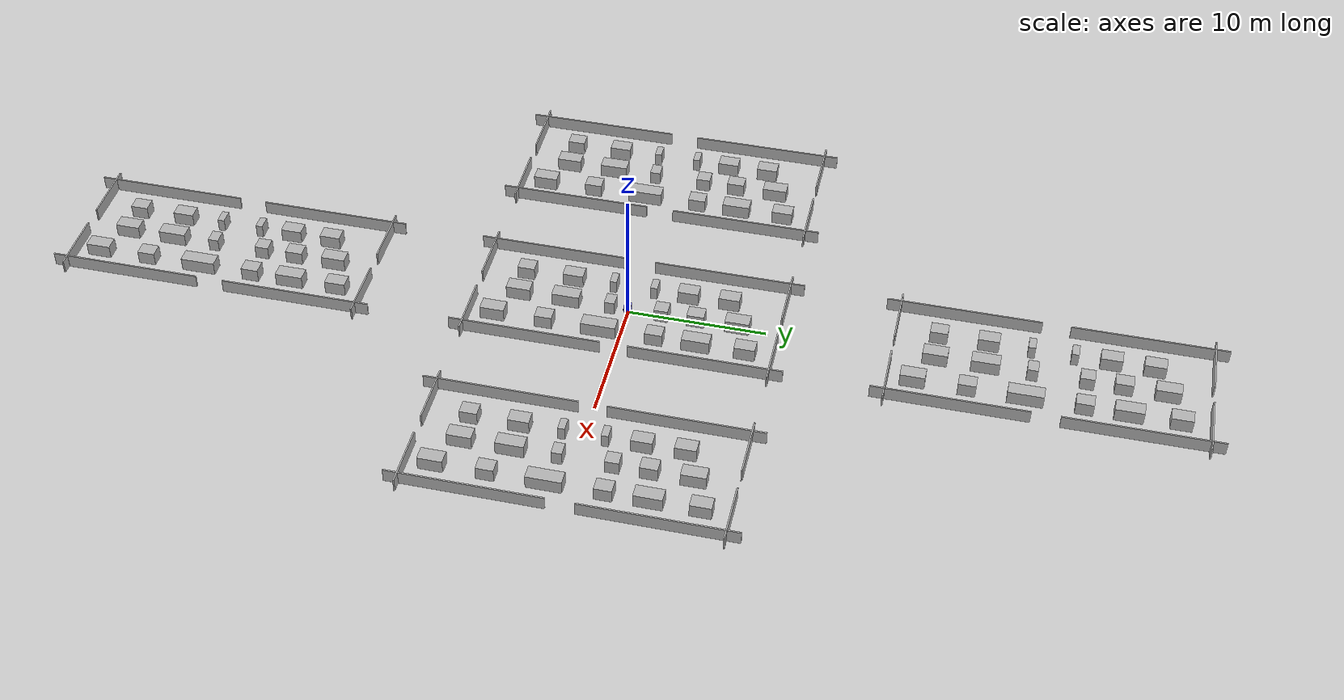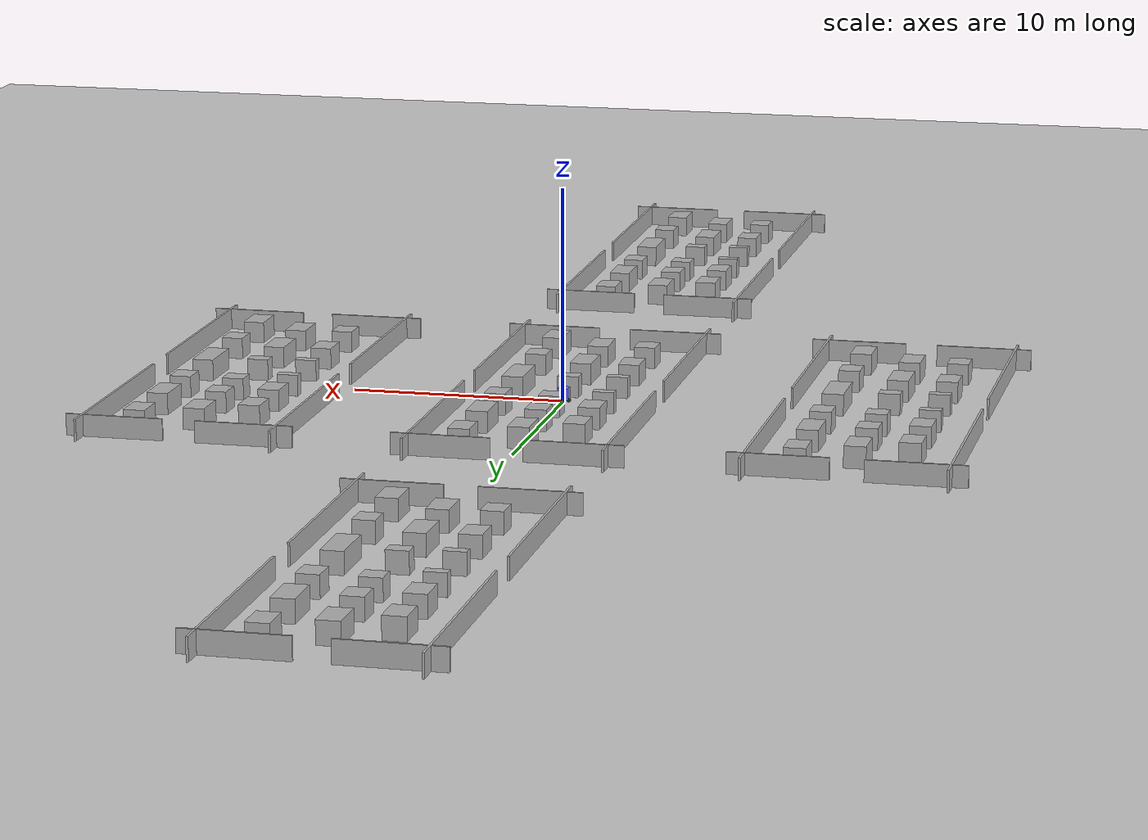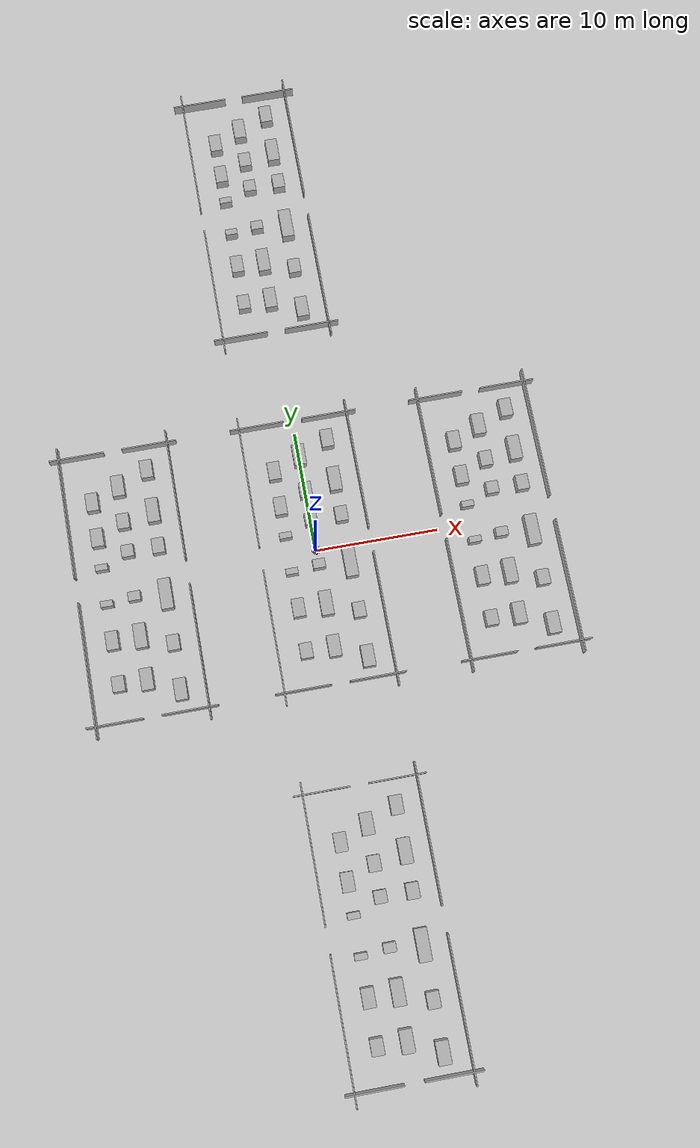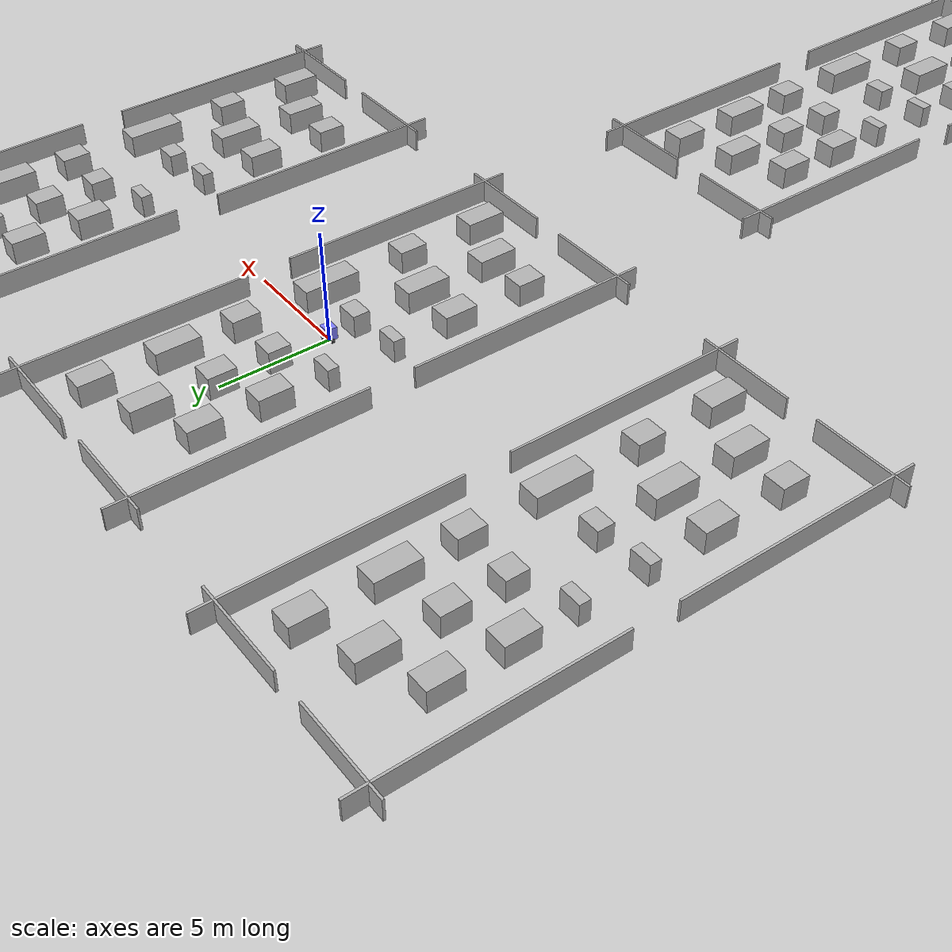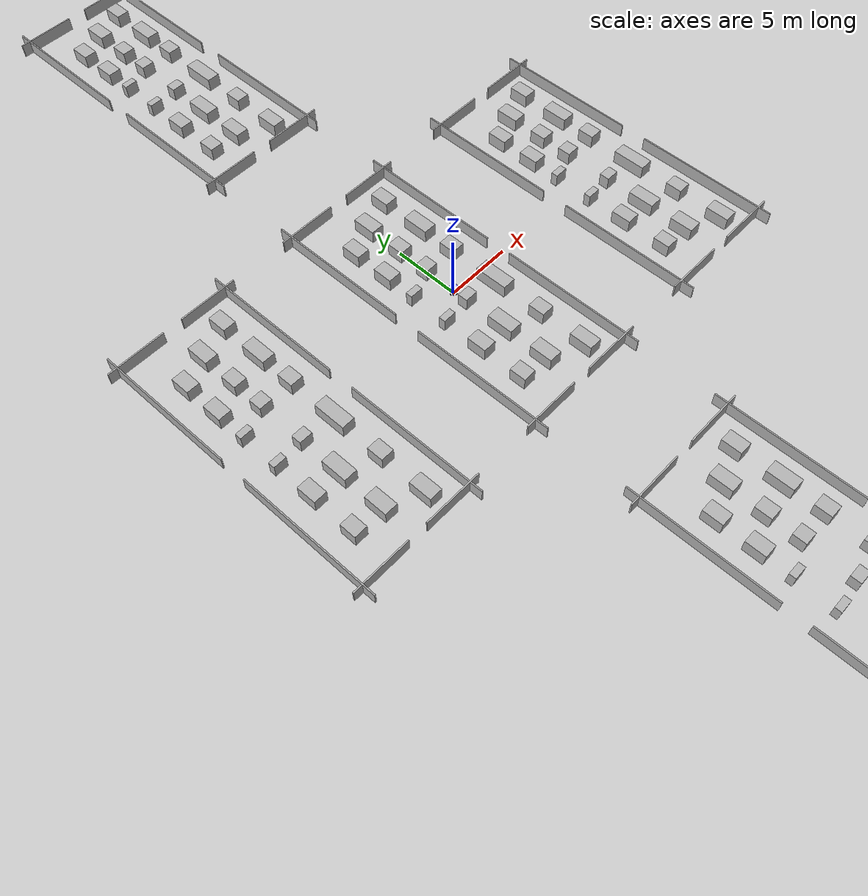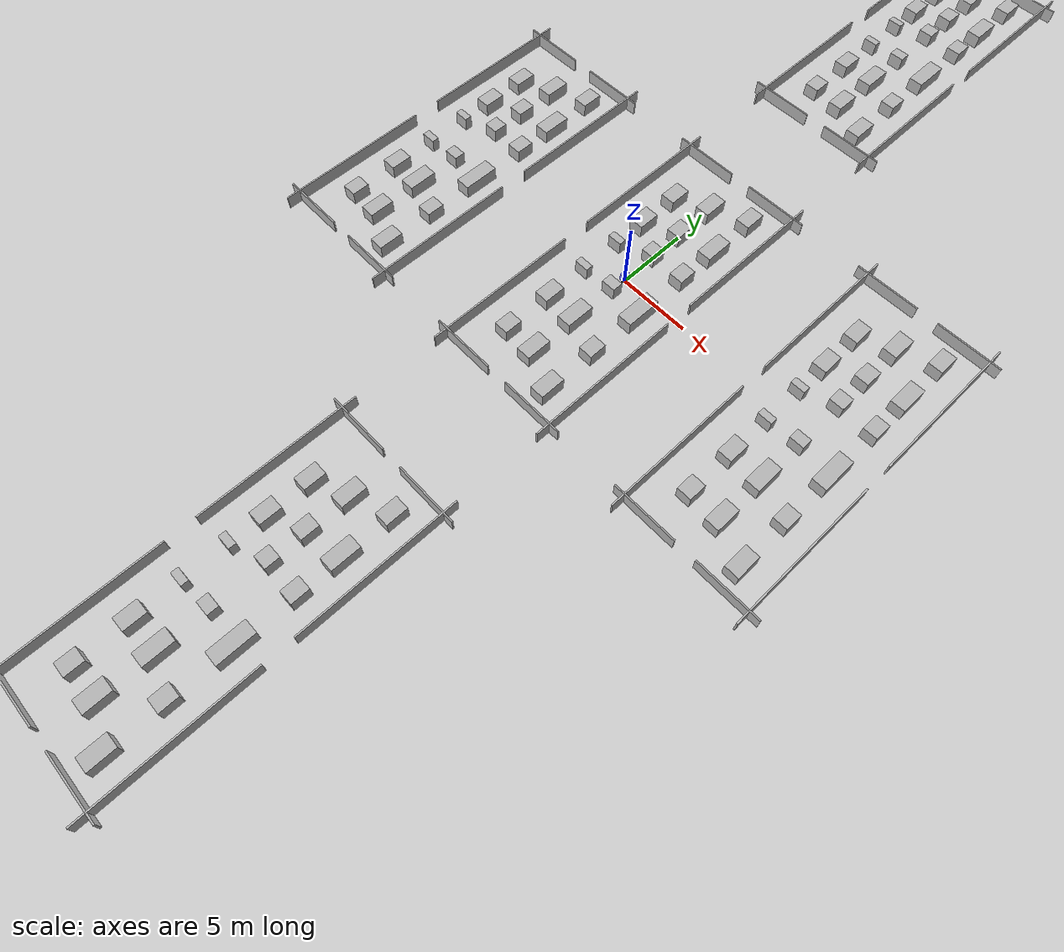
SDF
<?xml version="1.0" ?>
<sdf version="1.8">
  <world name="demo">
    <physics name="1ms" type="ignored">
      <max_step_size>0.001</max_step_size>
      <real_time_factor>1.0</real_time_factor>
    </physics>
    <plugin
      filename="gz-sim-physics-system"
      name="gz::sim::systems::Physics">
    </plugin>
    <plugin
      filename="gz-sim-navsat-system"
      name="gz::sim::systems::NavSat">
    </plugin>
    <plugin
      filename="gz-sim-sensors-system"
      name="gz::sim::systems::Sensors">
      <render_engine>ogre2</render_engine>
    </plugin>
    <plugin
      filename="gz-sim-imu-system"
      name="gz::sim::systems::Imu">
    </plugin>
    <plugin
      filename="gz-sim-scene-broadcaster-system"
      name="gz::sim::systems::SceneBroadcaster">
    </plugin>
    <plugin
      filename="gz-sim-user-commands-system"
      name="gz::sim::systems::UserCommands">
    </plugin>

    <!-- Set the coordinates for the world origin -->
    <spherical_coordinates>
      <surface_model>EARTH_WGS84</surface_model>
      <world_frame_orientation>ENU</world_frame_orientation>
      <latitude_deg>-22.986687</latitude_deg>
      <longitude_deg>-43.202501</longitude_deg>
      <elevation>0</elevation>
      <heading_deg>0</heading_deg>
    </spherical_coordinates>

    <light name="sun" type="directional">
      <cast_shadows>true</cast_shadows>
      <pose>0 0 10 0 0 0</pose>
      <diffuse>0.8 0.8 0.8 1</diffuse>
      <specular>0.2 0.2 0.2 1</specular>
      <attenuation>
        <range>1000</range>
        <constant>0.9</constant>
        <linear>0.01</linear>
        <quadratic>0.001</quadratic>
      </attenuation>
      <direction>-0.5 0.1 -0.9</direction>
    </light>

    <model name="ground_plane">
      <static>true</static>
      <link name="link">
        <collision name="collision">
          <geometry>
            <plane>
              <normal>0 0 1</normal>
              <size>40 85</size>
            </plane>
          </geometry>
        </collision>
        <visual name="visual">
          <geometry>
            <plane>
              <normal>0 0 1</normal>
              <size>40 85</size>
            </plane>
          </geometry>
          <material>
            <ambient>0.8 0.8 0.8 1</ambient>
            <diffuse>0.8 0.8 0.8 1</diffuse>
            <specular>0.8 0.8 0.8 1</specular>
          </material>
        </visual>
      </link>
    </model>

    <model name="section_0">
      <static>true</static>
      <self_collide>true</self_collide>
      <pose>0 0 0.5 0 0 0</pose>
      <include merge="true">
        <uri>package://gz_worlds/models/section_0</uri>
      </include>
    </model>

    <model name="section_0_1">
      <static>true</static>
      <self_collide>true</self_collide>
      <pose>15.0 0.0 0.5 0 0 0</pose>
      <include merge="true">
        <uri>package://gz_worlds/models/section_0</uri>
      </include>
    </model>

    <model name="section_0_2">
      <static>true</static>
      <self_collide>true</self_collide>
      <pose>-15.0 0.0 0.5 0 0 0</pose>
      <include merge="true">
        <uri>package://gz_worlds/models/section_0</uri>
      </include>
    </model>

    <model name="section_0_3">
      <static>true</static>
      <self_collide>true</self_collide>
      <pose>0 30.0 0.5 0 0 0</pose>
      <include merge="true">
        <uri>package://gz_worlds/models/section_0</uri>
      </include>
    </model>

    <model name="section_0_4">
      <static>true</static>
      <self_collide>true</self_collide>
      <pose>0 -30.0 0.5 0 0 0</pose>
      <include merge="true">
        <uri>package://gz_worlds/models/section_0</uri>
      </include>
    </model>

    <model name="diff_drive">
      <self_collide>true</self_collide>
      <pose>0 0 0.225 0 0 0</pose>
      <include merge="true">
        <uri>package://gz_worlds/models/diff_drive</uri>
      </include>

      <plugin
        filename="gz-sim-joint-state-publisher-system"
        name="gz::sim::systems::JointStatePublisher">
      </plugin>

      <plugin
        filename="gz-sim-pose-publisher-system"
        name="gz::sim::systems::PosePublisher">
        <publish_link_pose>false</publish_link_pose>
        <use_pose_vector_msg>false</use_pose_vector_msg>
        <static_publisher>false</static_publisher>
        <static_update_frequency>1</static_update_frequency>
      </plugin>

    </model>

  </world>
</sdf>
